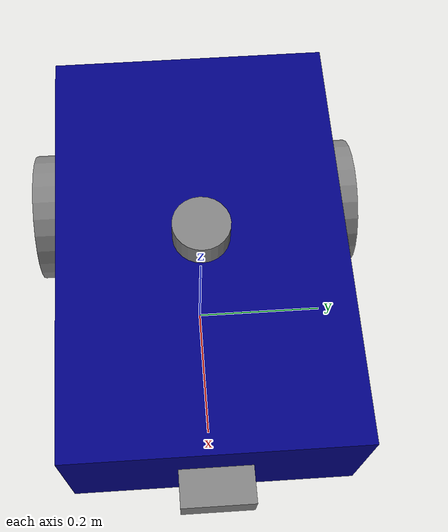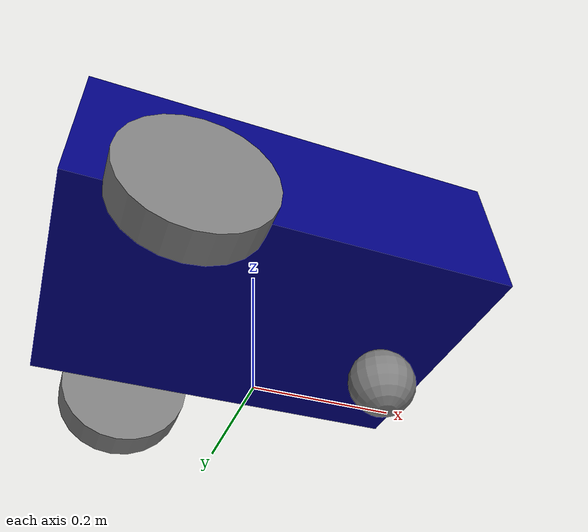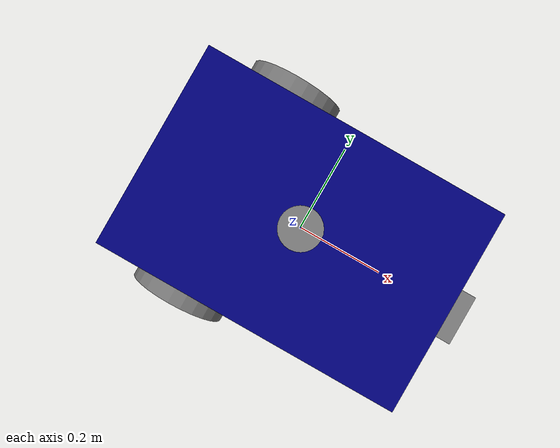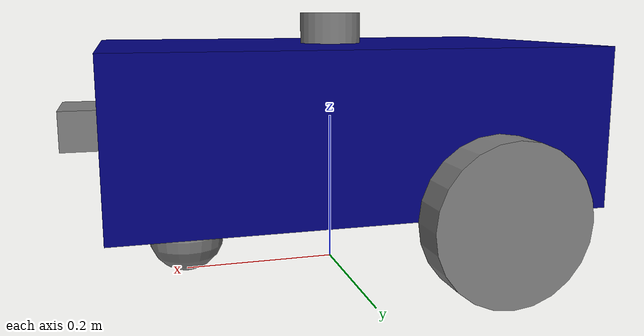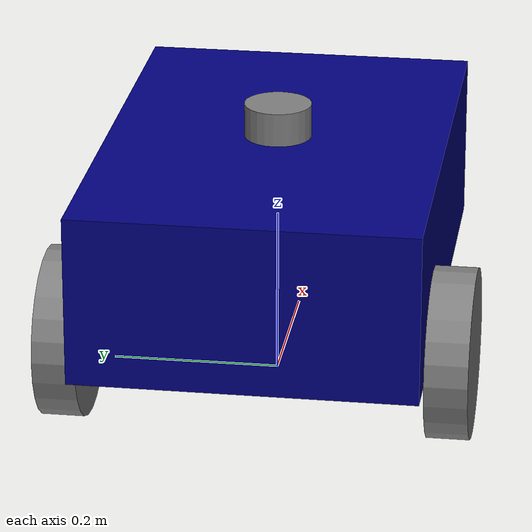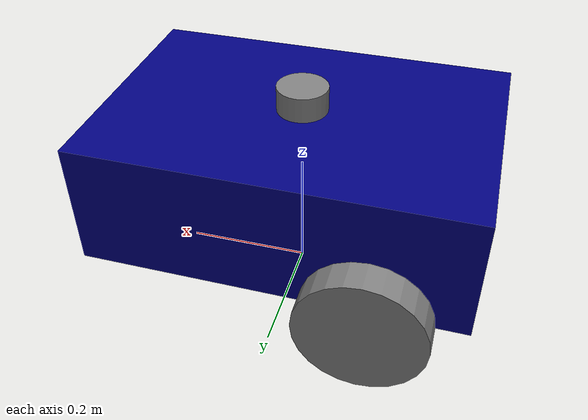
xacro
<?xml version="1.0"?>
<robot name="my_robot"
    xmlns:xacro="http://www.ros.org/wiki/xacro">

    <xacro:include filename="common_properties.xacro" />
    <xacro:include filename="mobile_base.xacro" />
    <xacro:include filename="mobile_base_gazebo.xacro" />
    <xacro:include filename="camera.xacro" />
    <xacro:include filename="lidar.xacro" />

</robot>

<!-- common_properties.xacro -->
<robot xmlns:xacro="http://www.ros.org/wiki/xacro">

    <material name="blue">
        <color rgba="0 0 0.5 1" />
    </material>

    <material name="grey">
        <color rgba="0.5 0.5 0.5 1" />
    </material>

    <material name="yellow">
        <color rgba="1 1 0 1" />
    </material>

    <material name="orange">
        <color rgba="1 0.5 0 1" />
    </material>

    <xacro:macro name="box_inertia" params="m x y z o_xyz o_rpy">
        <inertial>
            <mass value="${m}" />
            <origin xyz="${o_xyz}" rpy="${o_rpy}" />
            <inertia ixx="${(m/12) * (y*y + z*z)}" ixy="0" ixz="0" iyy="${(m/12) * (x*x + z*z)}" iyz="0" izz="${(m/12) * (x*x + y*y)}" />
        </inertial>
    </xacro:macro>

    <xacro:macro name="cylinder_inertia" params="m r l o_xyz o_rpy">
        <inertial>
            <mass value="${m}" />
            <origin xyz="${o_xyz}" rpy="${o_rpy}" />
            <inertia ixx="${(m/12) * (3*r*r + l*l)}" ixy="0" ixz="0" iyy="${(m/12) * (3*r*r + l*l)}" iyz="0" izz="${(m/2) * (r*r)}" />
        </inertial>
    </xacro:macro>

    <xacro:macro name="sphere_inertia" params="m r o_xyz o_rpy">
        <inertial>
            <mass value="${m}" />
            <origin xyz="${o_xyz}" rpy="${o_rpy}" />
            <inertia ixx="${(2/5) * m * r * r}" ixy="0" ixz="0" iyy="${(2/5) * m * r * r}" iyz="0" izz="${(2/5) * m * r * r}" />
        </inertial>
    </xacro:macro>

</robot>

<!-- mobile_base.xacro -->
<robot xmlns:xacro="http://www.ros.org/wiki/xacro">

    <xacro:property name="base_length" value="0.6" />
    <xacro:property name="base_width" value="0.4" />
    <xacro:property name="base_height" value="0.2" />
    <xacro:property name="wheel_radius" value="0.1" />
    <xacro:property name="wheel_length" value="0.05" />

    <link name="base_footprint" />

    <link name="base_link">
        <visual>
            <geometry>
                <box size="${base_length} ${base_width} ${base_height}" />
            </geometry>
            <origin xyz="0 0 ${base_height / 2.0}" rpy="0 0 0" />
            <material name="blue" />
        </visual>
        <collision>
            <geometry>
                <box size="${base_length} ${base_width} ${base_height}" />
            </geometry>
            <origin xyz="0 0 ${base_height / 2.0}" rpy="0 0 0" />
        </collision>
        <xacro:box_inertia m="5.0" x="${base_length}" y="${base_width}" z="${base_height}"
                           o_xyz="0 0 ${base_height / 2.0}" o_rpy="0 0 0" />
    </link>

    <xacro:macro name="wheel_link" params="prefix">
        <link name="${prefix}_wheel_link">
            <visual>
                <geometry>
                    <cylinder radius="${wheel_radius}" length="${wheel_length}" />
                </geometry>
                <origin xyz="0 0 0" rpy="${pi / 2.0} 0 0" />
                <material name="grey" />
            </visual>
            <collision>
                <geometry>
                    <cylinder radius="${wheel_radius}" length="${wheel_length}" />
                </geometry>
                <origin xyz="0 0 0" rpy="${pi / 2.0} 0 0" />
            </collision>
            <xacro:cylinder_inertia m="1.0" r="${wheel_radius}" l="${wheel_length}"
                                    o_xyz="0 0 0" o_rpy="${pi / 2.0} 0 0" />
        </link>
    </xacro:macro>

    <xacro:wheel_link prefix="right" />
    <xacro:wheel_link prefix="left" />

    <link name="caster_wheel_link">
        <visual>
            <geometry>
                <sphere radius="${wheel_radius / 2.0}" />
            </geometry>
            <origin xyz="0 0 0" rpy="0 0 0" />
            <material name="grey" />
        </visual>
        <collision>
            <geometry>
                <sphere radius="${wheel_radius / 2.0}" />
            </geometry>
            <origin xyz="0 0 0" rpy="0 0 0" />
        </collision>
        <xacro:sphere_inertia m="0.5" r="${wheel_radius / 2.0}"
                              o_xyz="0 0 0" o_rpy="0 0 0" />
    </link>

    <joint name="base_joint" type="fixed">
        <parent link="base_footprint" />
        <child link="base_link" />
        <origin xyz="0 0 ${wheel_radius}" rpy="0 0 0"/>
    </joint>

    <joint name="base_right_wheel_joint" type="continuous">
        <parent link="base_link" />
        <child link="right_wheel_link" />
        <origin xyz="${-base_length / 4.0} ${-(base_width + wheel_length) / 2.0} 0" rpy="0 0 0" />
        <axis xyz="0 1 0" />
    </joint>

    <joint name="base_left_wheel_joint" type="continuous">
        <parent link="base_link" />
        <child link="left_wheel_link" />
        <origin xyz="${-base_length / 4.0} ${(base_width + wheel_length) / 2.0} 0" rpy="0 0 0" />
        <axis xyz="0 1 0" />
    </joint>

    <joint name="base_caster_wheel_joint" type="fixed">
        <parent link="base_link" />
        <child link="caster_wheel_link" />
        <origin xyz="${base_length / 3.0} 0 ${-wheel_radius / 2.0}" rpy="0 0 0" />
    </joint>

</robot>

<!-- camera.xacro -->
<robot xmlns:xacro="http://www.ros.org/wiki/xacro">

    <xacro:property name="camera_length" value="0.05" />
    <xacro:property name="camera_width" value="0.1" />
    <xacro:property name="camera_height" value="0.05" />

    <link name="camera_link">
        <visual>
            <geometry>
                <box size="${camera_length} ${camera_width} ${camera_height}" />
            </geometry>
            <material name="grey" />
        </visual>
        <collision>
            <geometry>
                <box size="${camera_length} ${camera_width} ${camera_height}" />
            </geometry>
        </collision>
        <xacro:box_inertia m="0.1" x="${camera_length}" y="${camera_width}" z="${camera_height}" o_xyz="0 0 0" o_rpy="0 0 0" />
    </link>

    <joint name="base_camera_joint" type="fixed">
        <parent link="base_link" />
        <child link="camera_link" />
        <origin xyz="${(base_length + camera_length )/ 2.0} 0 ${base_height / 2.0}" rpy="0 0 0" />
    </joint>

    <link name="camera_link_optical" />

    <!-- OpenCVs axes are different from Gazebo's axes. So use a dummy joint to convert the axes. -->
    <joint name="camera_optical_joint" type="fixed">
        <parent link="camera_link" />
        <child link="camera_link_optical" />
        <origin xyz="0 0 0" rpy="${-pi/2} 0 ${-pi/2}" />
    </joint>

    <gazebo>
        <plugin filename="gz-sim-sensors-system" name="gz::sim::systems::Sensors">
            <render_engine>ogre2</render_engine>
        </plugin>
    </gazebo>

    <gazebo reference="camera_link">
        <sensor type="camera" name="camera">
            <camera>
                <horizontal_fov>1.3962634</horizontal_fov>
                <image>
                    <width>640</width>
                    <height>480</height>
                    <format>R8G8B8</format>
                </image>
                <clip>
                    <near>0.1</near>
                    <far>15</far>
                </clip>
                <noise>
                    <type>gaussian</type>
                    <mean>0.0</mean>
                    <stddev>0.007</stddev>
                </noise>
                <optical_frame_id>camera_link_optical</optical_frame_id>
                <camera_info_topic>camera/camera_info</camera_info_topic>
            </camera>
            <always_on>1</always_on>
            <update_rate>20</update_rate>
            <visualize>true</visualize>
            <topic>camera/image_raw</topic>

        </sensor>
    </gazebo>
</robot>

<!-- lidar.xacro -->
<robot xmlns:xacro="http://www.ros.org/wiki/xacro">

    <xacro:property name="lidar_radius" value="0.04" />
    <xacro:property name="lidar_height" value="0.04" />

    <link name="lidar_link">
        <visual>
            <geometry>
                <cylinder radius="${lidar_radius}" length="${lidar_height}" />
            </geometry>
            <origin xyz="0 0 0" rpy="0 0 0" />
            <material name="grey" />
        </visual>
        <collision>
            <geometry>
                <cylinder radius="${lidar_radius}" length="${lidar_height}" />
            </geometry>
            <origin xyz="0 0 0" rpy="0 0 0" />
        </collision>
        <xacro:cylinder_inertia m="0.1" r="${lidar_radius}" l="${lidar_height}"
                                o_xyz="0 0 0" o_rpy="0 0 0" />
    </link>

    <joint name="base_lidar_joint" type="fixed">
        <parent link="base_link" />
        <child link="lidar_link" />
        <origin xyz="0 0 ${base_height + lidar_height / 2.0}" rpy="0 0 0" />
    </joint>

    <gazebo reference="lidar_link">
        <sensor type="gpu_lidar" name="lidar">
            <topic>lidar</topic>
            <update_rate>10</update_rate>
            <lidar>
                <scan>
                    <horizontal>
                        <samples>640</samples>
                        <resolution>1</resolution>
                        <min_angle>-3.14159</min_angle>
                        <max_angle>3.14159</max_angle>
                    </horizontal>
                    <vertical>
                        <samples>16</samples>
                        <resolution>1</resolution>
                        <min_angle>-0.261799</min_angle>
                        <max_angle>0.261799</max_angle>
                    </vertical>
                </scan>
                <range>
                    <min>0.08</min>
                    <max>10.0</max>
                    <resolution>0.01</resolution>
                </range>
            </lidar>
            <always_on>1</always_on>
            <visualize>true</visualize>
        </sensor>
    </gazebo>

</robot>
